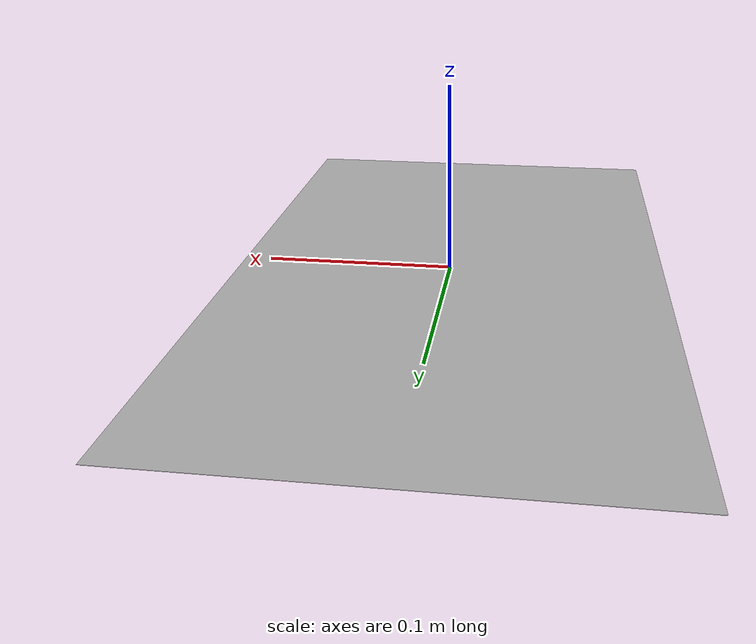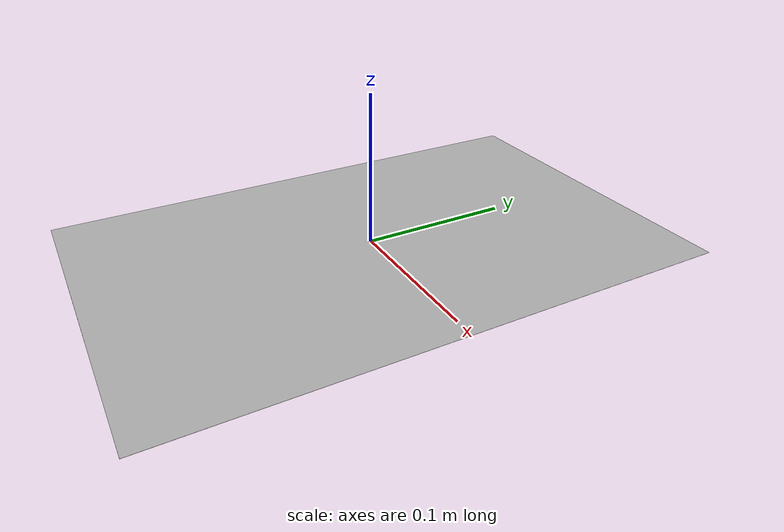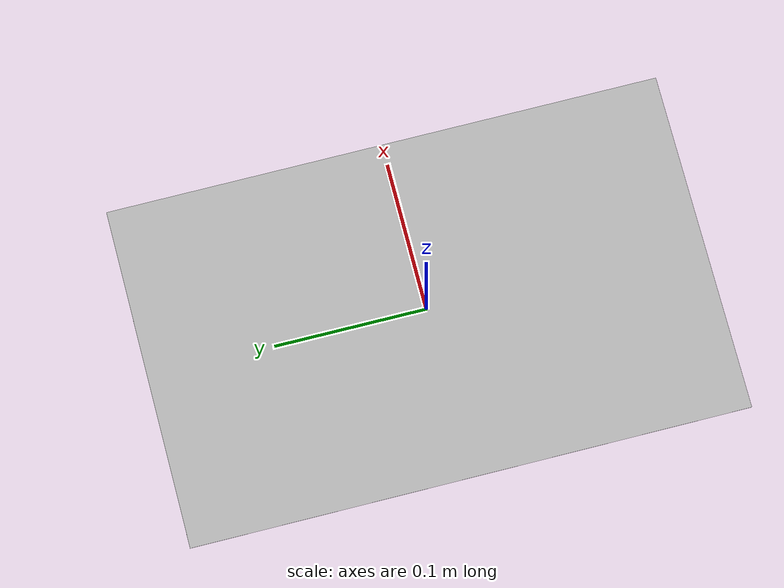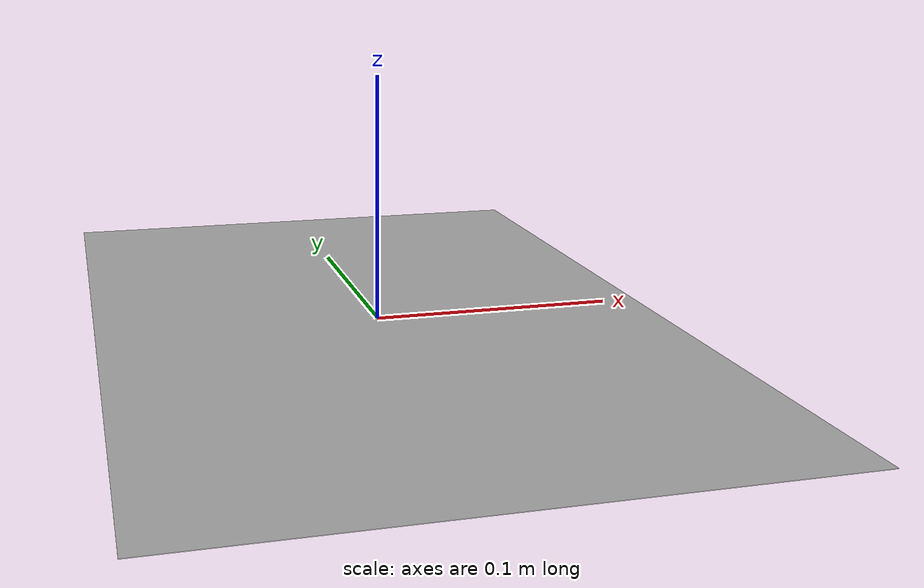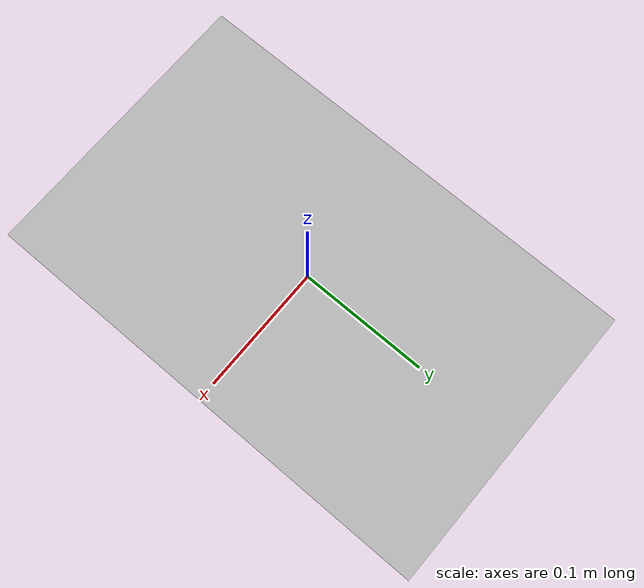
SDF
<?xml version="1.0" ?>
<sdf version="1.5">
  <model name="ca_tft">
    <static>true</static>
    <link name="link">
      <visual name="visual">
        <plugin name="ca_tft_plugin" filename="libca_tft.so">
        </plugin>
        <geometry>
          <plane>
            <size>0.2286 0.36576</size>
          </plane>
        </geometry>
        <material>
          <script>
            <uri>model://ca_field/Materials/scripts/</uri>
            <uri>model://ca_field/Materials/textures/</uri>
            <name>CAField/Stop</name>
          </script>
        </material>
      </visual>
    </link>
  </model>
</sdf>
